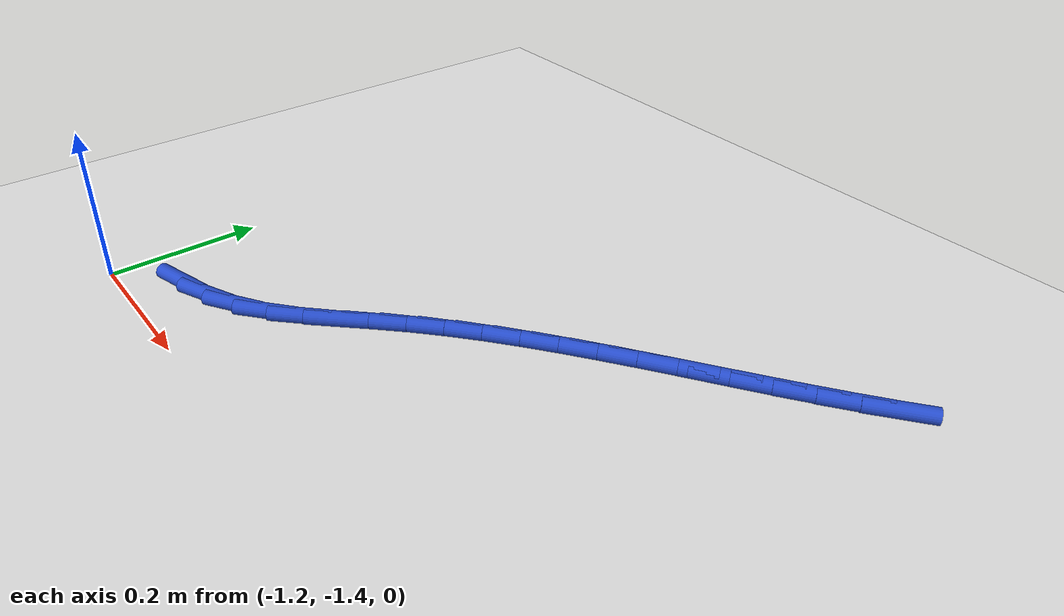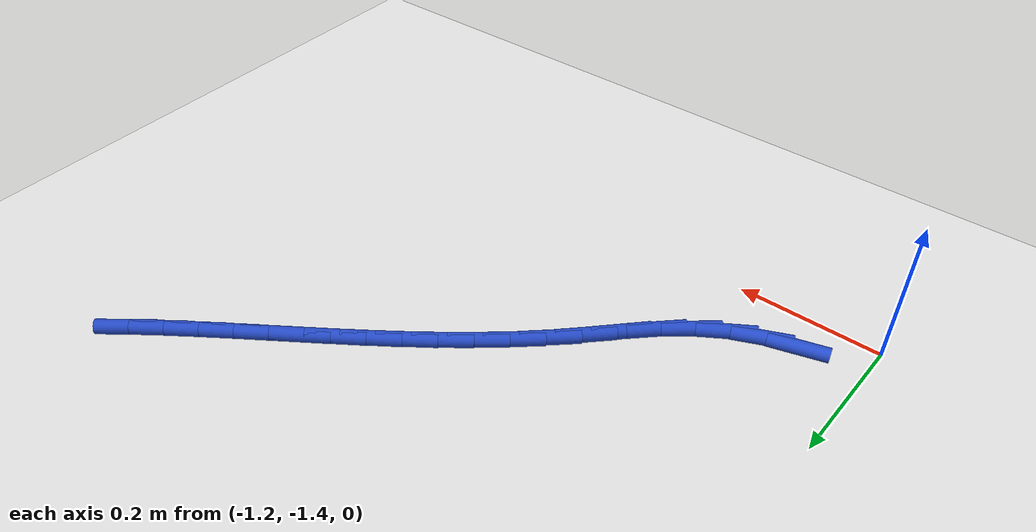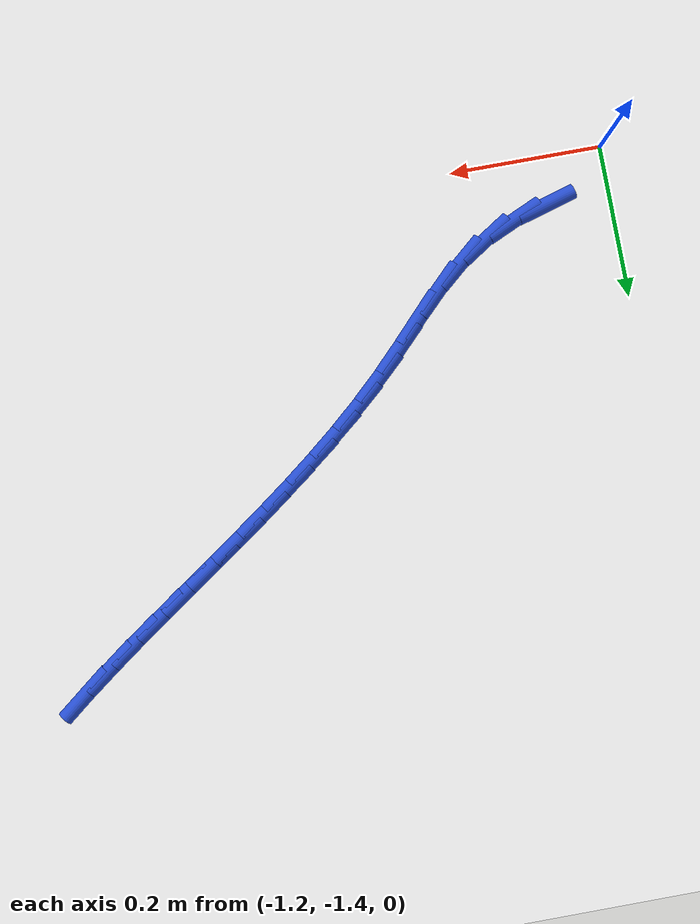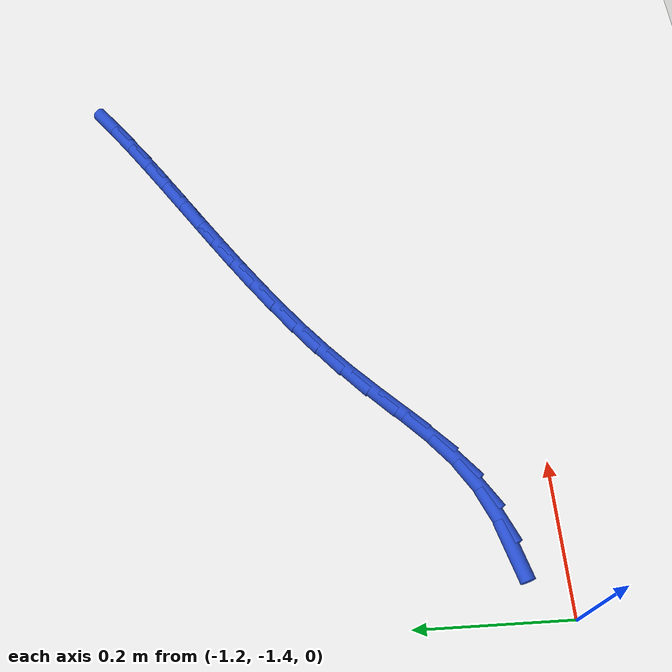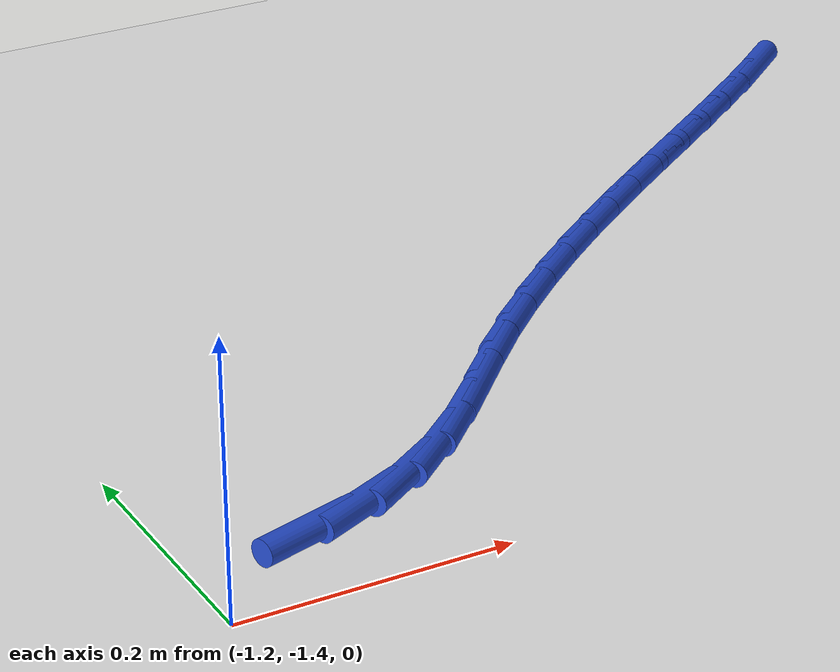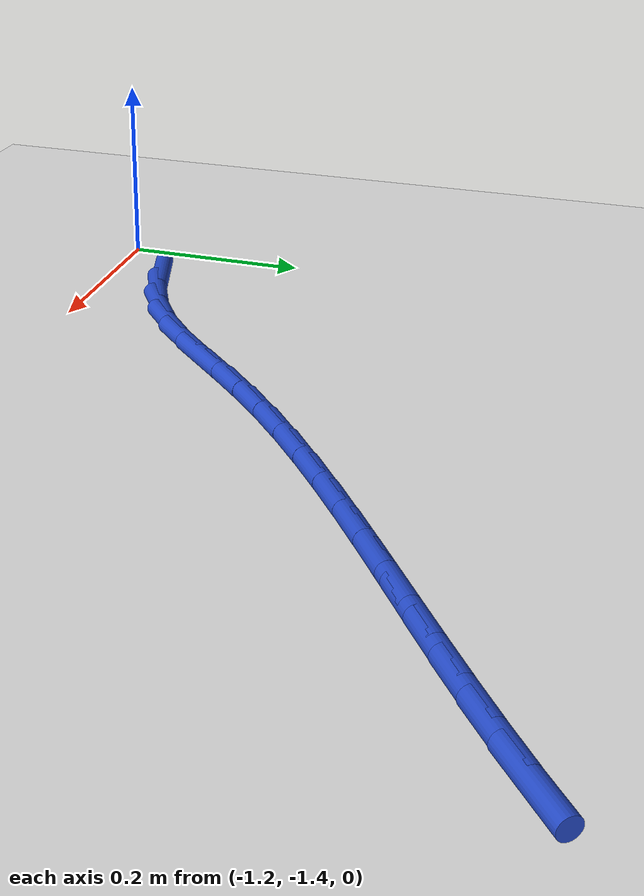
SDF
<sdf version="1.6">
 <world name="default">
  <model name="ground_plane">
   <static>1</static>
   <link name="link">
    <collision name="collision">
     <geometry><plane><normal>0 0 1</normal><size>100 100</size></plane></geometry>
     <surface><friction><ode><mu>100</mu><mu2>50</mu2></ode></friction></surface>
    </collision>
    <visual name="visual">
     <cast_shadows>0</cast_shadows>
     <geometry><plane><normal>0 0 1</normal><size>100 100</size></plane></geometry>
     <material>
      <script><uri>file://media/materials/scripts/gazebo.material</uri><name>Gazebo/WhiteGlow</name></script>
     </material>
    </visual>
   </link>
  </model>
  <model name="line">
   <link name="link_120">
    <pose>-1.11464904350152 -1.3357990757499805 0.01 0 1.57 0.2848834556513177</pose>
    <collision name="collision">
     <geometry><cylinder><radius>0.01</radius><length>0.08</length></cylinder></geometry>
    </collision>
    <visual name="visual">
     <material>
      <script><name>Gazebo/Blue</name><uri>file://media/materials/scripts/gazebo.material</uri></script>
     </material>
     <geometry><cylinder><radius>0.01</radius><length>0.08</length></cylinder></geometry>
    </visual>
   </link>
   <link name="link_121">
    <pose>-1.0702422189857375 -1.3227945789617674 0.01 0 1.57 0.42402525057123114</pose>
    <collision name="collision">
     <geometry><cylinder><radius>0.01</radius><length>0.08</length></cylinder></geometry>
    </collision>
    <visual name="visual">
     <material>
      <script><name>Gazebo/Blue</name><uri>file://media/materials/scripts/gazebo.material</uri></script>
     </material>
     <geometry><cylinder><radius>0.01</radius><length>0.08</length></cylinder></geometry>
    </visual>
   </link>
   <link name="link_122">
    <pose>-1.028944480683586 -1.3041523974297982 0.01 0 1.57 0.5764297106204886</pose>
    <collision name="collision">
     <geometry><cylinder><radius>0.01</radius><length>0.08</length></cylinder></geometry>
    </collision>
    <visual name="visual">
     <material>
      <script><name>Gazebo/Blue</name><uri>file://media/materials/scripts/gazebo.material</uri></script>
     </material>
     <geometry><cylinder><radius>0.01</radius><length>0.08</length></cylinder></geometry>
    </visual>
   </link>
   <link name="link_123">
    <pose>-0.9913404225582896 -1.2797068447768511 0.01 0 1.57 0.7065509014746078</pose>
    <collision name="collision">
     <geometry><cylinder><radius>0.01</radius><length>0.08</length></cylinder></geometry>
    </collision>
    <visual name="visual">
     <material>
      <script><name>Gazebo/Blue</name><uri>file://media/materials/scripts/gazebo.material</uri></script>
     </material>
     <geometry><cylinder><radius>0.01</radius><length>0.08</length></cylinder></geometry>
    </visual>
   </link>
   <link name="link_124">
    <pose>-0.9569951889903091 -1.2503915011603182 0.01 0 1.57 0.7851131024147644</pose>
    <collision name="collision">
     <geometry><cylinder><radius>0.01</radius><length>0.08</length></cylinder></geometry>
    </collision>
    <visual name="visual">
     <material>
      <script><name>Gazebo/Blue</name><uri>file://media/materials/scripts/gazebo.material</uri></script>
     </material>
     <geometry><cylinder><radius>0.01</radius><length>0.08</length></cylinder></geometry>
    </visual>
   </link>
   <link name="link_125">
    <pose>-0.9246324962080845 -1.218047253802536 0.01 0 1.57 0.8133640902144004</pose>
    <collision name="collision">
     <geometry><cylinder><radius>0.01</radius><length>0.08</length></cylinder></geometry>
    </collision>
    <visual name="visual">
     <material>
      <script><name>Gazebo/Blue</name><uri>file://media/materials/scripts/gazebo.material</uri></script>
     </material>
     <geometry><cylinder><radius>0.01</radius><length>0.08</length></cylinder></geometry>
    </visual>
   </link>
   <link name="link_126">
    <pose>-0.8929508737019899 -1.1845421486384813 0.01 0 1.57 0.7940666209268082</pose>
    <collision name="collision">
     <geometry><cylinder><radius>0.01</radius><length>0.08</length></cylinder></geometry>
    </collision>
    <visual name="visual">
     <material>
      <script><name>Gazebo/Blue</name><uri>file://media/materials/scripts/gazebo.material</uri></script>
     </material>
     <geometry><cylinder><radius>0.01</radius><length>0.08</length></cylinder></geometry>
    </visual>
   </link>
   <link name="link_127">
    <pose>-0.8606772099080419 -1.1517040521784767 0.01 0 1.57 0.7525152175431074</pose>
    <collision name="collision">
     <geometry><cylinder><radius>0.01</radius><length>0.08</length></cylinder></geometry>
    </collision>
    <visual name="visual">
     <material>
      <script><name>Gazebo/Blue</name><uri>file://media/materials/scripts/gazebo.material</uri></script>
     </material>
     <geometry><cylinder><radius>0.01</radius><length>0.08</length></cylinder></geometry>
    </visual>
   </link>
   <link name="link_128">
    <pose>-0.827227326565217 -1.1203847387998376 0.01 0 1.57 0.7149893337111131</pose>
    <collision name="collision">
     <geometry><cylinder><radius>0.01</radius><length>0.08</length></cylinder></geometry>
    </collision>
    <visual name="visual">
     <material>
      <script><name>Gazebo/Blue</name><uri>file://media/materials/scripts/gazebo.material</uri></script>
     </material>
     <geometry><cylinder><radius>0.01</radius><length>0.08</length></cylinder></geometry>
    </visual>
   </link>
   <link name="link_129">
    <pose>-0.7927269930202268 -1.090430117331241 0.01 0 1.57 0.6828913625176402</pose>
    <collision name="collision">
     <geometry><cylinder><radius>0.01</radius><length>0.08</length></cylinder></geometry>
    </collision>
    <visual name="visual">
     <material>
      <script><name>Gazebo/Blue</name><uri>file://media/materials/scripts/gazebo.material</uri></script>
     </material>
     <geometry><cylinder><radius>0.01</radius><length>0.08</length></cylinder></geometry>
    </visual>
   </link>
   <link name="link_130">
    <pose>-0.7573345416158767 -1.0616399608082845 0.01 0 1.57 0.6563301650852533</pose>
    <collision name="collision">
     <geometry><cylinder><radius>0.01</radius><length>0.08</length></cylinder></geometry>
    </collision>
    <visual name="visual">
     <material>
      <script><name>Gazebo/Blue</name><uri>file://media/materials/scripts/gazebo.material</uri></script>
     </material>
     <geometry><cylinder><radius>0.01</radius><length>0.08</length></cylinder></geometry>
    </visual>
   </link>
   <link name="link_131">
    <pose>-0.7212083046949704 -1.0338140422665636 0.01 0 1.57 0.6353543529545304</pose>
    <collision name="collision">
     <geometry><cylinder><radius>0.01</radius><length>0.08</length></cylinder></geometry>
    </collision>
    <visual name="visual">
     <material>
      <script><name>Gazebo/Blue</name><uri>file://media/materials/scripts/gazebo.material</uri></script>
     </material>
     <geometry><cylinder><radius>0.01</radius><length>0.08</length></cylinder></geometry>
    </visual>
   </link>
   <link name="link_132">
    <pose>-0.6845066146003146 -1.006752134741675 0.01 0 1.57 0.6199762659293039</pose>
    <collision name="collision">
     <geometry><cylinder><radius>0.01</radius><length>0.08</length></cylinder></geometry>
    </collision>
    <visual name="visual">
     <material>
      <script><name>Gazebo/Blue</name><uri>file://media/materials/scripts/gazebo.material</uri></script>
     </material>
     <geometry><cylinder><radius>0.01</radius><length>0.08</length></cylinder></geometry>
    </visual>
   </link>
   <link name="link_133">
    <pose>-0.6473878036747132 -0.980254011269215 0.01 0 1.57 0.6101915249683284</pose>
    <collision name="collision">
     <geometry><cylinder><radius>0.01</radius><length>0.08</length></cylinder></geometry>
    </collision>
    <visual name="visual">
     <material>
      <script><name>Gazebo/Blue</name><uri>file://media/materials/scripts/gazebo.material</uri></script>
     </material>
     <geometry><cylinder><radius>0.01</radius><length>0.08</length></cylinder></geometry>
    </visual>
   </link>
   <link name="link_134">
    <pose>-0.610010204260971 -0.9541194448847792 0.01 0 1.57 0.6059934724159345</pose>
    <collision name="collision">
     <geometry><cylinder><radius>0.01</radius><length>0.08</length></cylinder></geometry>
    </collision>
    <visual name="visual">
     <material>
      <script><name>Gazebo/Blue</name><uri>file://media/materials/scripts/gazebo.material</uri></script>
     </material>
     <geometry><cylinder><radius>0.01</radius><length>0.08</length></cylinder></geometry>
    </visual>
   </link>
   <link name="link_135">
    <pose>-0.5725321487018932 -0.9281482086239637 0.01 0 1.57 0.6073823447758988</pose>
    <collision name="collision">
     <geometry><cylinder><radius>0.01</radius><length>0.08</length></cylinder></geometry>
    </collision>
    <visual name="visual">
     <material>
      <script><name>Gazebo/Blue</name><uri>file://media/materials/scripts/gazebo.material</uri></script>
     </material>
     <geometry><cylinder><radius>0.01</radius><length>0.08</length></cylinder></geometry>
    </visual>
   </link>
   <link name="link_136">
    <pose>-0.5351119693402837 -0.9021400755223645 0.01 0 1.57 0.614369222427773</pose>
    <collision name="collision">
     <geometry><cylinder><radius>0.01</radius><length>0.08</length></cylinder></geometry>
    </collision>
    <visual name="visual">
     <material>
      <script><name>Gazebo/Blue</name><uri>file://media/materials/scripts/gazebo.material</uri></script>
     </material>
     <geometry><cylinder><radius>0.01</radius><length>0.08</length></cylinder></geometry>
    </visual>
   </link>
   <link name="link_137">
    <pose>-0.4979079985189489 -0.8758948186155787 0.01 0 1.57 0.6269747832020651</pose>
    <collision name="collision">
     <geometry><cylinder><radius>0.01</radius><length>0.08</length></cylinder></geometry>
    </collision>
    <visual name="visual">
     <material>
      <script><name>Gazebo/Blue</name><uri>file://media/materials/scripts/gazebo.material</uri></script>
     </material>
     <geometry><cylinder><radius>0.01</radius><length>0.08</length></cylinder></geometry>
    </visual>
   </link>
   <link name="link_138">
    <pose>-0.4610785685806931 -0.849212210939202 0.01 0 1.57 0.6452227757817858</pose>
    <collision name="collision">
     <geometry><cylinder><radius>0.01</radius><length>0.08</length></cylinder></geometry>
    </collision>
    <visual name="visual">
     <material>
      <script><name>Gazebo/Blue</name><uri>file://media/materials/scripts/gazebo.material</uri></script>
     </material>
     <geometry><cylinder><radius>0.01</radius><length>0.08</length></cylinder></geometry>
    </visual>
   </link>
   <link name="link_139">
    <pose>-0.42478201186832093 -0.8218920255288301 0.01 0 1.57 0.6691280470739681</pose>
    <collision name="collision">
     <geometry><cylinder><radius>0.01</radius><length>0.08</length></cylinder></geometry>
    </collision>
    <visual name="visual">
     <material>
      <script><name>Gazebo/Blue</name><uri>file://media/materials/scripts/gazebo.material</uri></script>
     </material>
     <geometry><cylinder><radius>0.01</radius><length>0.08</length></cylinder></geometry>
    </visual>
   </link>
  </model>
 </world>
</sdf>
